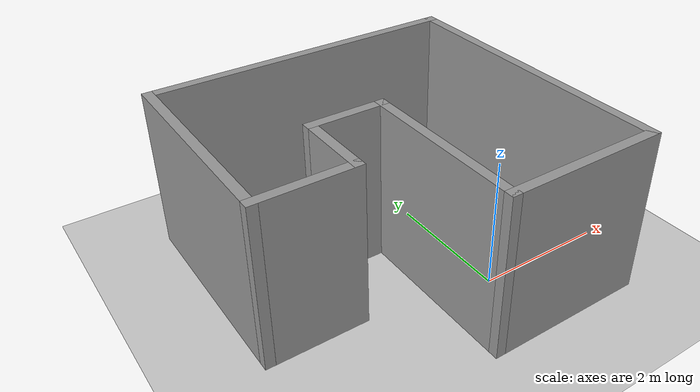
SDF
<sdf version="1.7">
 <world name="default">
  <light name="sun" type="directional">
   <pose>0 0 10 0 -0 0</pose>
   <diffuse>0.8 0.8 0.8 1</diffuse>
   <specular>0.2 0.2 0.2 1</specular>
   <attenuation>
    <range>1000</range>
    <constant>0.9</constant>
    <linear>0.01</linear>
    <quadratic>0.001</quadratic>
   </attenuation>
   <direction>-0.5 0.1 -0.9</direction>
   <spot><inner_angle>0</inner_angle><outer_angle>0</outer_angle><falloff>0</falloff></spot>
  </light>
  <model name="ground_plane">
   <static>1</static>
   <link name="link">
    <collision name="collision">
     <geometry><plane><normal>0 0 1</normal><size>100 100</size></plane></geometry>
     <surface>
      <contact><collide_bitmask>65535</collide_bitmask></contact>
      <friction><ode><mu>100</mu><mu2>50</mu2></ode></friction>
     </surface>
    </collision>
    <visual name="visual">
     <cast_shadows>0</cast_shadows>
     <geometry><plane><normal>0 0 1</normal><size>100 100</size></plane></geometry>
     <material>
      <script><uri>file://media/materials/scripts/gazebo.material</uri><name>Gazebo/Grey</name></script>
     </material>
    </visual>
   </link>
  </model>
  <gravity>0 0 -9.8</gravity>
  <magnetic_field>6e-06 2.3e-05 -4.2e-05</magnetic_field>
  <atmosphere type="adiabatic"/>
  <physics type="ode">
   <max_step_size>0.001</max_step_size>
   <real_time_factor>1</real_time_factor>
   <real_time_update_rate>1000</real_time_update_rate>
  </physics>
  <scene><ambient>0.4 0.4 0.4 1</ambient><background>0.7 0.7 0.7 1</background><shadows>1</shadows></scene>
  <audio><device>default</device></audio>
  <spherical_coordinates>
   <surface_model>EARTH_WGS84</surface_model>
   <latitude_deg>0</latitude_deg>
   <longitude_deg>0</longitude_deg>
   <elevation>0</elevation>
   <heading_deg>0</heading_deg>
  </spherical_coordinates>
  <model name="intro.world">
   <pose>-0.902905 1.19502 0 0 -0 0</pose>
   <link name="Wall_0">
    <collision name="Wall_0_Collision">
     <geometry><box><size>3.25 0.15 2.5</size></box></geometry>
     <pose>0 0 1.25 0 -0 0</pose>
    </collision>
    <visual name="Wall_0_Visual">
     <pose>0 0 1.25 0 -0 0</pose>
     <geometry><box><size>3.25 0.15 2.5</size></box></geometry>
     <material>
      <script><uri>file://media/materials/scripts/gazebo.material</uri><name>Gazebo/Grey</name></script>
      <ambient>1 1 1 1</ambient>
     </material>
     <meta><layer>0</layer></meta>
    </visual>
    <pose>-2.425 0.75 0 0 -0 1.5708</pose>
   </link>
   <link name="Wall_1">
    <collision name="Wall_1_Collision">
     <geometry><box><size>0.15 0.15 2.5</size></box></geometry>
     <pose>0 0 1.25 0 -0 0</pose>
    </collision>
    <visual name="Wall_1_Visual">
     <pose>0 0 1.25 0 -0 0</pose>
     <geometry><box><size>0.15 0.15 2.5</size></box></geometry>
     <material>
      <script><uri>file://media/materials/scripts/gazebo.material</uri><name>Gazebo/Grey</name></script>
      <ambient>1 1 1 1</ambient>
     </material>
     <meta><layer>0</layer></meta>
    </visual>
    <pose>-2.425 2.3 0 0 -0 0</pose>
   </link>
   <link name="Wall_2">
    <collision name="Wall_2_Collision">
     <geometry><box><size>5 0.15 2.5</size></box></geometry>
     <pose>0 0 1.25 0 -0 0</pose>
    </collision>
    <visual name="Wall_2_Visual">
     <pose>0 0 1.25 0 -0 0</pose>
     <geometry><box><size>5 0.15 2.5</size></box></geometry>
     <material>
      <script><uri>file://media/materials/scripts/gazebo.material</uri><name>Gazebo/Grey</name></script>
      <ambient>1 1 1 1</ambient>
     </material>
     <meta><layer>0</layer></meta>
    </visual>
    <pose>0 2.3 0 0 -0 0</pose>
   </link>
   <link name="Wall_3">
    <collision name="Wall_3_Collision">
     <geometry><box><size>4.75 0.15 2.5</size></box></geometry>
     <pose>0 0 1.25 0 -0 0</pose>
    </collision>
    <visual name="Wall_3_Visual">
     <pose>0 0 1.25 0 -0 0</pose>
     <geometry><box><size>4.75 0.15 2.5</size></box></geometry>
     <material>
      <script><uri>file://media/materials/scripts/gazebo.material</uri><name>Gazebo/Grey</name></script>
      <ambient>1 1 1 1</ambient>
     </material>
     <meta><layer>0</layer></meta>
    </visual>
    <pose>2.425 0 0 0 -0 -1.5708</pose>
   </link>
   <link name="Wall_4">
    <collision name="Wall_4_Collision">
     <geometry><box><size>2.5 0.15 2.5</size></box></geometry>
     <pose>0 0 1.25 0 -0 0</pose>
    </collision>
    <visual name="Wall_4_Visual">
     <pose>0 0 1.25 0 -0 0</pose>
     <geometry><box><size>2.5 0.15 2.5</size></box></geometry>
     <material>
      <script><uri>file://media/materials/scripts/gazebo.material</uri><name>Gazebo/Grey</name></script>
      <ambient>1 1 1 1</ambient>
     </material>
     <meta><layer>0</layer></meta>
    </visual>
    <pose>1.25 -2.3 0 0 -0 3.14159</pose>
   </link>
   <link name="Wall_5">
    <collision name="Wall_5_Collision">
     <geometry><box><size>2.75 0.15 2.5</size></box></geometry>
     <pose>0 0 1.25 0 -0 0</pose>
    </collision>
    <visual name="Wall_5_Visual">
     <pose>0 0 1.25 0 -0 0</pose>
     <geometry><box><size>2.75 0.15 2.5</size></box></geometry>
     <material>
      <script><uri>file://media/materials/scripts/gazebo.material</uri><name>Gazebo/Grey</name></script>
      <ambient>1 1 1 1</ambient>
     </material>
     <meta><layer>0</layer></meta>
    </visual>
    <pose>0.075 -1 0 0 -0 1.5708</pose>
   </link>
   <link name="Wall_6">
    <collision name="Wall_6_Collision">
     <geometry><box><size>1.25 0.15 2.5</size></box></geometry>
     <pose>0 0 1.25 0 -0 0</pose>
    </collision>
    <visual name="Wall_6_Visual">
     <pose>0 0 1.25 0 -0 0</pose>
     <geometry><box><size>1.25 0.15 2.5</size></box></geometry>
     <material>
      <script><uri>file://media/materials/scripts/gazebo.material</uri><name>Gazebo/Grey</name></script>
      <ambient>1 1 1 1</ambient>
     </material>
     <meta><layer>0</layer></meta>
    </visual>
    <pose>-0.475 0.3 0 0 -0 3.14159</pose>
   </link>
   <link name="Wall_7">
    <collision name="Wall_7_Collision">
     <geometry><box><size>1.25 0.15 2.5</size></box></geometry>
     <pose>0 0 1.25 0 -0 0</pose>
    </collision>
    <visual name="Wall_7_Visual">
     <pose>0 0 1.25 0 -0 0</pose>
     <geometry><box><size>1.25 0.15 2.5</size></box></geometry>
     <material>
      <script><uri>file://media/materials/scripts/gazebo.material</uri><name>Gazebo/Grey</name></script>
      <ambient>1 1 1 1</ambient>
     </material>
     <meta><layer>0</layer></meta>
    </visual>
    <pose>-1.025 -0.25 0 0 -0 -1.5708</pose>
   </link>
   <link name="Wall_8">
    <collision name="Wall_8_Collision">
     <geometry><box><size>1.55 0.15 2.5</size></box></geometry>
     <pose>0 0 1.25 0 -0 0</pose>
    </collision>
    <visual name="Wall_8_Visual">
     <pose>0 0 1.25 0 -0 0</pose>
     <geometry><box><size>1.55 0.15 2.5</size></box></geometry>
     <material>
      <script><uri>file://media/materials/scripts/gazebo.material</uri><name>Gazebo/Grey</name></script>
      <ambient>1 1 1 1</ambient>
     </material>
     <meta><layer>0</layer></meta>
    </visual>
    <pose>-1.725 -0.8 0 0 -0 3.14159</pose>
   </link>
   <static>1</static>
  </model>
 </world>
</sdf>
